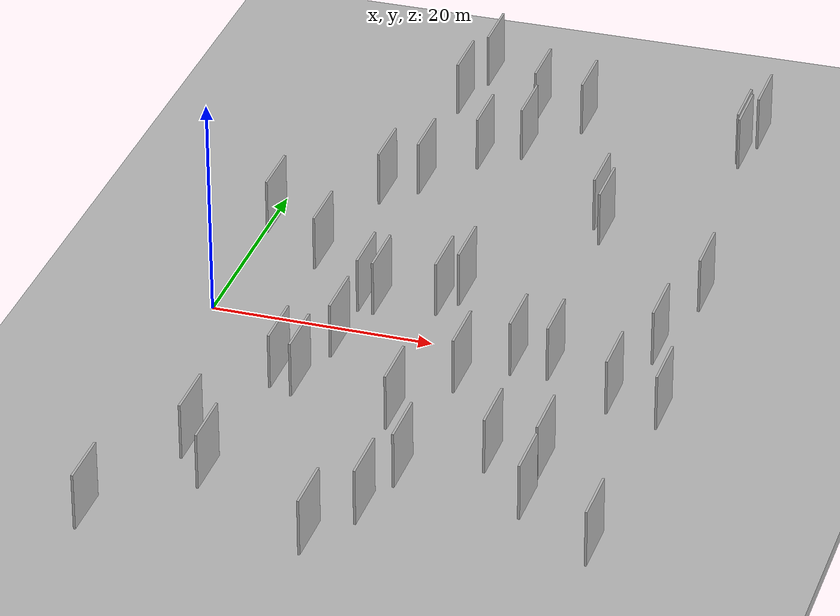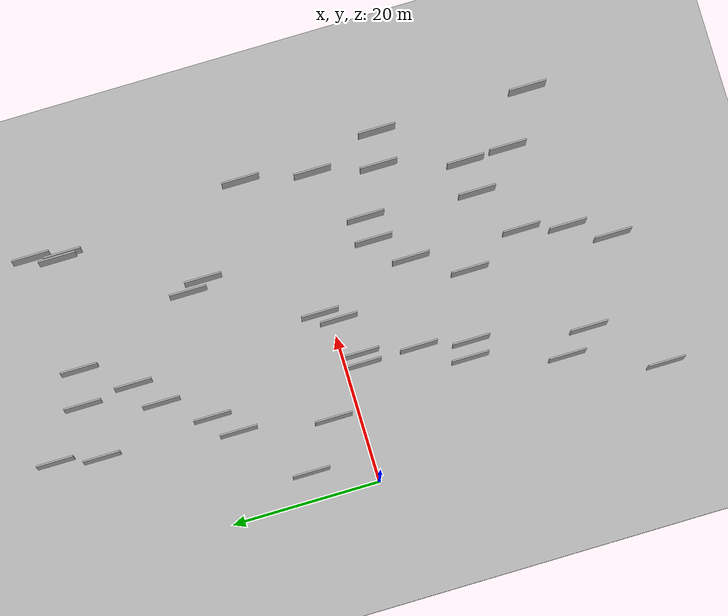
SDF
<?xml version="1.0" encoding="utf-8"?>

<sdf version="1.6">

   <world name="default">

      <gui fullscreen="0">

         <camera name="user_camera">

            <pose>-15 0 4.57585 0 0 0</pose>

            <view_controller>orbit</view_controller>

         </camera>

      </gui>

      <scene>

         <sky>

           <clouds>

             <speed>12</speed>

           </clouds>

         </sky>

         <ambient>0.4 0.4 0.4 1</ambient>

         <background>0.7 0.7 0.7 1</background>

         <shadows>1</shadows>

      </scene>

      <gravity>0 0 -9.8066</gravity>

      <magnetic_field>6e-06 2.3e-05 -4.2e-05</magnetic_field>

      <physics default="0" name="default_physics" type="ode">

         <ode>

            <solver>

               <type>quick</type>

               <iters>10</iters>

               <sor>1.0</sor>

               <use_dynamic_moi_rescaling>0</use_dynamic_moi_rescaling>

            </solver>

            <constraints>

               <cfm>0</cfm>

               <erp>0.2</erp>

               <contact_max_correcting_vel>100</contact_max_correcting_vel>

               <contact_surface_layer>0.001</contact_surface_layer>

            </constraints>

         </ode>

         <max_step_size>0.004</max_step_size>

         <real_time_factor>1</real_time_factor>

         <real_time_update_rate>250</real_time_update_rate>

      </physics>

      <light name="sun" type="directional">

         <cast_shadows>1</cast_shadows>

         <pose>0 0 10 0 0 0</pose>

         <diffuse>0.8 0.8 0.8 1</diffuse>

         <specular>0.2 0.2 0.2 1</specular>

         <attenuation>

            <range>1000</range>

            <constant>0.9</constant>

            <linear>0.01</linear>

            <quadratic>0.001</quadratic>

         </attenuation>

         <direction>-0.5 0.1 -0.9</direction>

      </light>

      <include>

         <name>ground_plane_1</name>

         <uri>model://HANNAS_ground_plane</uri>

         <pose>0 0 0  0 0 0</pose>

      </include>

      <include>

         <name>ground_plane_2</name>

         <uri>model://HANNAS_ground_plane</uri>

         <pose>100 0 0  0 0 0</pose>

      </include>

      <model name="HANNAS_wall_1">

         <static>1</static>

         <pose frame="">39.2944 32.1262 5.0 0.000000 0.000000 1.570796</pose>

         <link name="link">

            <pose frame="">0 0 2.50 0 0 0</pose>

            <collision name="collision">

               <geometry>

                  <box>

                     <size>5.00 0.2 5.00</size>

                  </box>

               </geometry>

               <max_contacts>10</max_contacts>

               <surface>

                  <contact>

                     <ode/>

                  </contact>

                  <bounce/>

                  <friction>

                     <torsional>

                        <ode/>

                     </torsional>

                     <ode/>

                  </friction>

               </surface>

            </collision>

            <visual name="visual">

               <cast_shadows>0</cast_shadows>

               <geometry>

                  <box>

                     <size>5.00 0.2 5.00</size>

                  </box>

               </geometry>

               <material>

                  <script>

                     <uri>model://HANNAS_wall/materials/scripts</uri>

                     <uri>model://HANNAS_wall/materials/textures</uri>

                     <name>vrc/HANNAS_wall</name>

                  </script>

               </material>

            </visual>

            <self_collide>0</self_collide>

            <enable_wind>0</enable_wind>

            <kinematic>0</kinematic>

         </link>

      </model>

      <model name="HANNAS_wall_2">

         <static>1</static>

         <pose frame="">36.5267 -22.5072 5.0 0.000000 0.000000 1.570796</pose>

         <link name="link">

            <pose frame="">0 0 2.50 0 0 0</pose>

            <collision name="collision">

               <geometry>

                  <box>

                     <size>5.00 0.2 5.00</size>

                  </box>

               </geometry>

               <max_contacts>10</max_contacts>

               <surface>

                  <contact>

                     <ode/>

                  </contact>

                  <bounce/>

                  <friction>

                     <torsional>

                        <ode/>

                     </torsional>

                     <ode/>

                  </friction>

               </surface>

            </collision>

            <visual name="visual">

               <cast_shadows>0</cast_shadows>

               <geometry>

                  <box>

                     <size>5.00 0.2 5.00</size>

                  </box>

               </geometry>

               <material>

                  <script>

                     <uri>model://HANNAS_wall/materials/scripts</uri>

                     <uri>model://HANNAS_wall/materials/textures</uri>

                     <name>vrc/HANNAS_wall</name>

                  </script>

               </material>

            </visual>

            <self_collide>0</self_collide>

            <enable_wind>0</enable_wind>

            <kinematic>0</kinematic>

         </link>

      </model>

      <model name="HANNAS_wall_3">

         <static>1</static>

         <pose frame="">30.2376 17.0134 5.0 0.000000 0.000000 1.570796</pose>

         <link name="link">

            <pose frame="">0 0 2.50 0 0 0</pose>

            <collision name="collision">

               <geometry>

                  <box>

                     <size>5.00 0.2 5.00</size>

                  </box>

               </geometry>

               <max_contacts>10</max_contacts>

               <surface>

                  <contact>

                     <ode/>

                  </contact>

                  <bounce/>

                  <friction>

                     <torsional>

                        <ode/>

                     </torsional>

                     <ode/>

                  </friction>

               </surface>

            </collision>

            <visual name="visual">

               <cast_shadows>0</cast_shadows>

               <geometry>

                  <box>

                     <size>5.00 0.2 5.00</size>

                  </box>

               </geometry>

               <material>

                  <script>

                     <uri>model://HANNAS_wall/materials/scripts</uri>

                     <uri>model://HANNAS_wall/materials/textures</uri>

                     <name>vrc/HANNAS_wall</name>

                  </script>

               </material>

            </visual>

            <self_collide>0</self_collide>

            <enable_wind>0</enable_wind>

            <kinematic>0</kinematic>

         </link>

      </model>

      <model name="HANNAS_wall_4">

         <static>1</static>

         <pose frame="">3.1405 8.2862 5.0 0.000000 0.000000 1.570796</pose>

         <link name="link">

            <pose frame="">0 0 2.50 0 0 0</pose>

            <collision name="collision">

               <geometry>

                  <box>

                     <size>5.00 0.2 5.00</size>

                  </box>

               </geometry>

               <max_contacts>10</max_contacts>

               <surface>

                  <contact>

                     <ode/>

                  </contact>

                  <bounce/>

                  <friction>

                     <torsional>

                        <ode/>

                     </torsional>

                     <ode/>

                  </friction>

               </surface>

            </collision>

            <visual name="visual">

               <cast_shadows>0</cast_shadows>

               <geometry>

                  <box>

                     <size>5.00 0.2 5.00</size>

                  </box>

               </geometry>

               <material>

                  <script>

                     <uri>model://HANNAS_wall/materials/scripts</uri>

                     <uri>model://HANNAS_wall/materials/textures</uri>

                     <name>vrc/HANNAS_wall</name>

                  </script>

               </material>

            </visual>

            <self_collide>0</self_collide>

            <enable_wind>0</enable_wind>

            <kinematic>0</kinematic>

         </link>

      </model>

      <model name="HANNAS_wall_5">

         <static>1</static>

         <pose frame="">43.5131 -33.0318 5.0 0.000000 0.000000 1.570796</pose>

         <link name="link">

            <pose frame="">0 0 2.50 0 0 0</pose>

            <collision name="collision">

               <geometry>

                  <box>

                     <size>5.00 0.2 5.00</size>

                  </box>

               </geometry>

               <max_contacts>10</max_contacts>

               <surface>

                  <contact>

                     <ode/>

                  </contact>

                  <bounce/>

                  <friction>

                     <torsional>

                        <ode/>

                     </torsional>

                     <ode/>

                  </friction>

               </surface>

            </collision>

            <visual name="visual">

               <cast_shadows>0</cast_shadows>

               <geometry>

                  <box>

                     <size>5.00 0.2 5.00</size>

                  </box>

               </geometry>

               <material>

                  <script>

                     <uri>model://HANNAS_wall/materials/scripts</uri>

                     <uri>model://HANNAS_wall/materials/textures</uri>

                     <name>vrc/HANNAS_wall</name>

                  </script>

               </material>

            </visual>

            <self_collide>0</self_collide>

            <enable_wind>0</enable_wind>

            <kinematic>0</kinematic>

         </link>

      </model>

      <model name="HANNAS_wall_6">

         <static>1</static>

         <pose frame="">12.6990 33.7295 5.0 0.000000 0.000000 1.570796</pose>

         <link name="link">

            <pose frame="">0 0 2.50 0 0 0</pose>

            <collision name="collision">

               <geometry>

                  <box>

                     <size>5.00 0.2 5.00</size>

                  </box>

               </geometry>

               <max_contacts>10</max_contacts>

               <surface>

                  <contact>

                     <ode/>

                  </contact>

                  <bounce/>

                  <friction>

                     <torsional>

                        <ode/>

                     </torsional>

                     <ode/>

                  </friction>

               </surface>

            </collision>

            <visual name="visual">

               <cast_shadows>0</cast_shadows>

               <geometry>

                  <box>

                     <size>5.00 0.2 5.00</size>

                  </box>

               </geometry>

               <material>

                  <script>

                     <uri>model://HANNAS_wall/materials/scripts</uri>

                     <uri>model://HANNAS_wall/materials/textures</uri>

                     <name>vrc/HANNAS_wall</name>

                  </script>

               </material>

            </visual>

            <self_collide>0</self_collide>

            <enable_wind>0</enable_wind>

            <kinematic>0</kinematic>

         </link>

      </model>

      <model name="HANNAS_wall_7">

         <static>1</static>

         <pose frame="">11.6338 -15.7226 5.0 0.000000 0.000000 1.570796</pose>

         <link name="link">

            <pose frame="">0 0 2.50 0 0 0</pose>

            <collision name="collision">

               <geometry>

                  <box>

                     <size>5.00 0.2 5.00</size>

                  </box>

               </geometry>

               <max_contacts>10</max_contacts>

               <surface>

                  <contact>

                     <ode/>

                  </contact>

                  <bounce/>

                  <friction>

                     <torsional>

                        <ode/>

                     </torsional>

                     <ode/>

                  </friction>

               </surface>

            </collision>

            <visual name="visual">

               <cast_shadows>0</cast_shadows>

               <geometry>

                  <box>

                     <size>5.00 0.2 5.00</size>

                  </box>

               </geometry>

               <material>

                  <script>

                     <uri>model://HANNAS_wall/materials/scripts</uri>

                     <uri>model://HANNAS_wall/materials/textures</uri>

                     <name>vrc/HANNAS_wall</name>

                  </script>

               </material>

            </visual>

            <self_collide>0</self_collide>

            <enable_wind>0</enable_wind>

            <kinematic>0</kinematic>

         </link>

      </model>

      <model name="HANNAS_wall_8">

         <static>1</static>

         <pose frame="">32.2095 -22.7883 5.0 0.000000 0.000000 1.570796</pose>

         <link name="link">

            <pose frame="">0 0 2.50 0 0 0</pose>

            <collision name="collision">

               <geometry>

                  <box>

                     <size>5.00 0.2 5.00</size>

                  </box>

               </geometry>

               <max_contacts>10</max_contacts>

               <surface>

                  <contact>

                     <ode/>

                  </contact>

                  <bounce/>

                  <friction>

                     <torsional>

                        <ode/>

                     </torsional>

                     <ode/>

                  </friction>

               </surface>

            </collision>

            <visual name="visual">

               <cast_shadows>0</cast_shadows>

               <geometry>

                  <box>

                     <size>5.00 0.2 5.00</size>

                  </box>

               </geometry>

               <material>

                  <script>

                     <uri>model://HANNAS_wall/materials/scripts</uri>

                     <uri>model://HANNAS_wall/materials/textures</uri>

                     <name>vrc/HANNAS_wall</name>

                  </script>

               </material>

            </visual>

            <self_collide>0</self_collide>

            <enable_wind>0</enable_wind>

            <kinematic>0</kinematic>

         </link>

      </model>

      <model name="HANNAS_wall_9">

         <static>1</static>

         <pose frame="">22.6856 1.3617 5.0 0.000000 0.000000 1.570796</pose>

         <link name="link">

            <pose frame="">0 0 2.50 0 0 0</pose>

            <collision name="collision">

               <geometry>

                  <box>

                     <size>5.00 0.2 5.00</size>

                  </box>

               </geometry>

               <max_contacts>10</max_contacts>

               <surface>

                  <contact>

                     <ode/>

                  </contact>

                  <bounce/>

                  <friction>

                     <torsional>

                        <ode/>

                     </torsional>

                     <ode/>

                  </friction>

               </surface>

            </collision>

            <visual name="visual">

               <cast_shadows>0</cast_shadows>

               <geometry>

                  <box>

                     <size>5.00 0.2 5.00</size>

                  </box>

               </geometry>

               <material>

                  <script>

                     <uri>model://HANNAS_wall/materials/scripts</uri>

                     <uri>model://HANNAS_wall/materials/textures</uri>

                     <name>vrc/HANNAS_wall</name>

                  </script>

               </material>

            </visual>

            <self_collide>0</self_collide>

            <enable_wind>0</enable_wind>

            <kinematic>0</kinematic>

         </link>

      </model>

      <model name="HANNAS_wall_10">

         <static>1</static>

         <pose frame="">21.3297 -0.7574 5.0 0.000000 0.000000 1.570796</pose>

         <link name="link">

            <pose frame="">0 0 2.50 0 0 0</pose>

            <collision name="collision">

               <geometry>

                  <box>

                     <size>5.00 0.2 5.00</size>

                  </box>

               </geometry>

               <max_contacts>10</max_contacts>

               <surface>

                  <contact>

                     <ode/>

                  </contact>

                  <bounce/>

                  <friction>

                     <torsional>

                        <ode/>

                     </torsional>

                     <ode/>

                  </friction>

               </surface>

            </collision>

            <visual name="visual">

               <cast_shadows>0</cast_shadows>

               <geometry>

                  <box>

                     <size>5.00 0.2 5.00</size>

                  </box>

               </geometry>

               <material>

                  <script>

                     <uri>model://HANNAS_wall/materials/scripts</uri>

                     <uri>model://HANNAS_wall/materials/textures</uri>

                     <name>vrc/HANNAS_wall</name>

                  </script>

               </material>

            </visual>

            <self_collide>0</self_collide>

            <enable_wind>0</enable_wind>

            <kinematic>0</kinematic>

         </link>

      </model>

      <model name="HANNAS_wall_11">

         <static>1</static>

         <pose frame="">11.0647 -31.6143 5.0 0.000000 0.000000 1.570796</pose>

         <link name="link">

            <pose frame="">0 0 2.50 0 0 0</pose>

            <collision name="collision">

               <geometry>

                  <box>

                     <size>5.00 0.2 5.00</size>

                  </box>

               </geometry>

               <max_contacts>10</max_contacts>

               <surface>

                  <contact>

                     <ode/>

                  </contact>

                  <bounce/>

                  <friction>

                     <torsional>

                        <ode/>

                     </torsional>

                     <ode/>

                  </friction>

               </surface>

            </collision>

            <visual name="visual">

               <cast_shadows>0</cast_shadows>

               <geometry>

                  <box>

                     <size>5.00 0.2 5.00</size>

                  </box>

               </geometry>

               <material>

                  <script>

                     <uri>model://HANNAS_wall/materials/scripts</uri>

                     <uri>model://HANNAS_wall/materials/textures</uri>

                     <name>vrc/HANNAS_wall</name>

                  </script>

               </material>

            </visual>

            <self_collide>0</self_collide>

            <enable_wind>0</enable_wind>

            <kinematic>0</kinematic>

         </link>

      </model>

      <model name="HANNAS_wall_12">

         <static>1</static>

         <pose frame="">17.3772 24.3900 5.0 0.000000 0.000000 1.570796</pose>

         <link name="link">

            <pose frame="">0 0 2.50 0 0 0</pose>

            <collision name="collision">

               <geometry>

                  <box>

                     <size>5.00 0.2 5.00</size>

                  </box>

               </geometry>

               <max_contacts>10</max_contacts>

               <surface>

                  <contact>

                     <ode/>

                  </contact>

                  <bounce/>

                  <friction>

                     <torsional>

                        <ode/>

                     </torsional>

                     <ode/>

                  </friction>

               </surface>

            </collision>

            <visual name="visual">

               <cast_shadows>0</cast_shadows>

               <geometry>

                  <box>

                     <size>5.00 0.2 5.00</size>

                  </box>

               </geometry>

               <material>

                  <script>

                     <uri>model://HANNAS_wall/materials/scripts</uri>

                     <uri>model://HANNAS_wall/materials/textures</uri>

                     <name>vrc/HANNAS_wall</name>

                  </script>

               </material>

            </visual>

            <self_collide>0</self_collide>

            <enable_wind>0</enable_wind>

            <kinematic>0</kinematic>

         </link>

      </model>

      <model name="HANNAS_wall_13">

         <static>1</static>

         <pose frame="">9.0673 3.5388 5.0 0.000000 0.000000 1.570796</pose>

         <link name="link">

            <pose frame="">0 0 2.50 0 0 0</pose>

            <collision name="collision">

               <geometry>

                  <box>

                     <size>5.00 0.2 5.00</size>

                  </box>

               </geometry>

               <max_contacts>10</max_contacts>

               <surface>

                  <contact>

                     <ode/>

                  </contact>

                  <bounce/>

                  <friction>

                     <torsional>

                        <ode/>

                     </torsional>

                     <ode/>

                  </friction>

               </surface>

            </collision>

            <visual name="visual">

               <cast_shadows>0</cast_shadows>

               <geometry>

                  <box>

                     <size>5.00 0.2 5.00</size>

                  </box>

               </geometry>

               <material>

                  <script>

                     <uri>model://HANNAS_wall/materials/scripts</uri>

                     <uri>model://HANNAS_wall/materials/textures</uri>

                     <name>vrc/HANNAS_wall</name>

                  </script>

               </material>

            </visual>

            <self_collide>0</self_collide>

            <enable_wind>0</enable_wind>

            <kinematic>0</kinematic>

         </link>

      </model>

      <model name="HANNAS_wall_14">

         <static>1</static>

         <pose frame="">40.3697 35.3827 5.0 0.000000 0.000000 1.570796</pose>

         <link name="link">

            <pose frame="">0 0 2.50 0 0 0</pose>

            <collision name="collision">

               <geometry>

                  <box>

                     <size>5.00 0.2 5.00</size>

                  </box>

               </geometry>

               <max_contacts>10</max_contacts>

               <surface>

                  <contact>

                     <ode/>

                  </contact>

                  <bounce/>

                  <friction>

                     <torsional>

                        <ode/>

                     </torsional>

                     <ode/>

                  </friction>

               </surface>

            </collision>

            <visual name="visual">

               <cast_shadows>0</cast_shadows>

               <geometry>

                  <box>

                     <size>5.00 0.2 5.00</size>

                  </box>

               </geometry>

               <material>

                  <script>

                     <uri>model://HANNAS_wall/materials/scripts</uri>

                     <uri>model://HANNAS_wall/materials/textures</uri>

                     <name>vrc/HANNAS_wall</name>

                  </script>

               </material>

            </visual>

            <self_collide>0</self_collide>

            <enable_wind>0</enable_wind>

            <kinematic>0</kinematic>

         </link>

      </model>

      <model name="HANNAS_wall_15">

         <static>1</static>

         <pose frame="">22.7039 -18.9560 5.0 0.000000 0.000000 1.570796</pose>

         <link name="link">

            <pose frame="">0 0 2.50 0 0 0</pose>

            <collision name="collision">

               <geometry>

                  <box>

                     <size>5.00 0.2 5.00</size>

                  </box>

               </geometry>

               <max_contacts>10</max_contacts>

               <surface>

                  <contact>

                     <ode/>

                  </contact>

                  <bounce/>

                  <friction>

                     <torsional>

                        <ode/>

                     </torsional>

                     <ode/>

                  </friction>

               </surface>

            </collision>

            <visual name="visual">

               <cast_shadows>0</cast_shadows>

               <geometry>

                  <box>

                     <size>5.00 0.2 5.00</size>

                  </box>

               </geometry>

               <material>

                  <script>

                     <uri>model://HANNAS_wall/materials/scripts</uri>

                     <uri>model://HANNAS_wall/materials/textures</uri>

                     <name>vrc/HANNAS_wall</name>

                  </script>

               </material>

            </visual>

            <self_collide>0</self_collide>

            <enable_wind>0</enable_wind>

            <kinematic>0</kinematic>

         </link>

      </model>

      <model name="HANNAS_wall_16">

         <static>1</static>

         <pose frame="">10.9204 15.8211 5.0 0.000000 0.000000 1.570796</pose>

         <link name="link">

            <pose frame="">0 0 2.50 0 0 0</pose>

            <collision name="collision">

               <geometry>

                  <box>

                     <size>5.00 0.2 5.00</size>

                  </box>

               </geometry>

               <max_contacts>10</max_contacts>

               <surface>

                  <contact>

                     <ode/>

                  </contact>

                  <bounce/>

                  <friction>

                     <torsional>

                        <ode/>

                     </torsional>

                     <ode/>

                  </friction>

               </surface>

            </collision>

            <visual name="visual">

               <cast_shadows>0</cast_shadows>

               <geometry>

                  <box>

                     <size>5.00 0.2 5.00</size>

                  </box>

               </geometry>

               <material>

                  <script>

                     <uri>model://HANNAS_wall/materials/scripts</uri>

                     <uri>model://HANNAS_wall/materials/textures</uri>

                     <name>vrc/HANNAS_wall</name>

                  </script>

               </material>

            </visual>

            <self_collide>0</self_collide>

            <enable_wind>0</enable_wind>

            <kinematic>0</kinematic>

         </link>

      </model>

      <model name="HANNAS_wall_17">

         <static>1</static>

         <pose frame="">8.3291 -27.8924 5.0 0.000000 0.000000 1.570796</pose>

         <link name="link">

            <pose frame="">0 0 2.50 0 0 0</pose>

            <collision name="collision">

               <geometry>

                  <box>

                     <size>5.00 0.2 5.00</size>

                  </box>

               </geometry>

               <max_contacts>10</max_contacts>

               <surface>

                  <contact>

                     <ode/>

                  </contact>

                  <bounce/>

                  <friction>

                     <torsional>

                        <ode/>

                     </torsional>

                     <ode/>

                  </friction>

               </surface>

            </collision>

            <visual name="visual">

               <cast_shadows>0</cast_shadows>

               <geometry>

                  <box>

                     <size>5.00 0.2 5.00</size>

                  </box>

               </geometry>

               <material>

                  <script>

                     <uri>model://HANNAS_wall/materials/scripts</uri>

                     <uri>model://HANNAS_wall/materials/textures</uri>

                     <name>vrc/HANNAS_wall</name>

                  </script>

               </material>

            </visual>

            <self_collide>0</self_collide>

            <enable_wind>0</enable_wind>

            <kinematic>0</kinematic>

         </link>

      </model>

      <model name="HANNAS_wall_18">

         <static>1</static>

         <pose frame="">33.1860 -7.9120 5.0 0.000000 0.000000 1.570796</pose>

         <link name="link">

            <pose frame="">0 0 2.50 0 0 0</pose>

            <collision name="collision">

               <geometry>

                  <box>

                     <size>5.00 0.2 5.00</size>

                  </box>

               </geometry>

               <max_contacts>10</max_contacts>

               <surface>

                  <contact>

                     <ode/>

                  </contact>

                  <bounce/>

                  <friction>

                     <torsional>

                        <ode/>

                     </torsional>

                     <ode/>

                  </friction>

               </surface>

            </collision>

            <visual name="visual">

               <cast_shadows>0</cast_shadows>

               <geometry>

                  <box>

                     <size>5.00 0.2 5.00</size>

                  </box>

               </geometry>

               <material>

                  <script>

                     <uri>model://HANNAS_wall/materials/scripts</uri>

                     <uri>model://HANNAS_wall/materials/textures</uri>

                     <name>vrc/HANNAS_wall</name>

                  </script>

               </material>

            </visual>

            <self_collide>0</self_collide>

            <enable_wind>0</enable_wind>

            <kinematic>0</kinematic>

         </link>

      </model>

      <model name="HANNAS_wall_19">

         <static>1</static>

         <pose frame="">13.7160 -16.4532 5.0 0.000000 0.000000 1.570796</pose>

         <link name="link">

            <pose frame="">0 0 2.50 0 0 0</pose>

            <collision name="collision">

               <geometry>

                  <box>

                     <size>5.00 0.2 5.00</size>

                  </box>

               </geometry>

               <max_contacts>10</max_contacts>

               <surface>

                  <contact>

                     <ode/>

                  </contact>

                  <bounce/>

                  <friction>

                     <torsional>

                        <ode/>

                     </torsional>

                     <ode/>

                  </friction>

               </surface>

            </collision>

            <visual name="visual">

               <cast_shadows>0</cast_shadows>

               <geometry>

                  <box>

                     <size>5.00 0.2 5.00</size>

                  </box>

               </geometry>

               <material>

                  <script>

                     <uri>model://HANNAS_wall/materials/scripts</uri>

                     <uri>model://HANNAS_wall/materials/textures</uri>

                     <name>vrc/HANNAS_wall</name>

                  </script>

               </material>

            </visual>

            <self_collide>0</self_collide>

            <enable_wind>0</enable_wind>

            <kinematic>0</kinematic>

         </link>

      </model>

      <model name="HANNAS_wall_20">

         <static>1</static>

         <pose frame="">25.9150 -26.9164 5.0 0.000000 0.000000 1.570796</pose>

         <link name="link">

            <pose frame="">0 0 2.50 0 0 0</pose>

            <collision name="collision">

               <geometry>

                  <box>

                     <size>5.00 0.2 5.00</size>

                  </box>

               </geometry>

               <max_contacts>10</max_contacts>

               <surface>

                  <contact>

                     <ode/>

                  </contact>

                  <bounce/>

                  <friction>

                     <torsional>

                        <ode/>

                     </torsional>

                     <ode/>

                  </friction>

               </surface>

            </collision>

            <visual name="visual">

               <cast_shadows>0</cast_shadows>

               <geometry>

                  <box>

                     <size>5.00 0.2 5.00</size>

                  </box>

               </geometry>

               <material>

                  <script>

                     <uri>model://HANNAS_wall/materials/scripts</uri>

                     <uri>model://HANNAS_wall/materials/textures</uri>

                     <name>vrc/HANNAS_wall</name>

                  </script>

               </material>

            </visual>

            <self_collide>0</self_collide>

            <enable_wind>0</enable_wind>

            <kinematic>0</kinematic>

         </link>

      </model>

      <model name="HANNAS_wall_21">

         <static>1</static>

         <pose frame="">3.8240 -39.8998 5.0 0.000000 0.000000 1.570796</pose>

         <link name="link">

            <pose frame="">0 0 2.50 0 0 0</pose>

            <collision name="collision">

               <geometry>

                  <box>

                     <size>5.00 0.2 5.00</size>

                  </box>

               </geometry>

               <max_contacts>10</max_contacts>

               <surface>

                  <contact>

                     <ode/>

                  </contact>

                  <bounce/>

                  <friction>

                     <torsional>

                        <ode/>

                     </torsional>

                     <ode/>

                  </friction>

               </surface>

            </collision>

            <visual name="visual">

               <cast_shadows>0</cast_shadows>

               <geometry>

                  <box>

                     <size>5.00 0.2 5.00</size>

                  </box>

               </geometry>

               <material>

                  <script>

                     <uri>model://HANNAS_wall/materials/scripts</uri>

                     <uri>model://HANNAS_wall/materials/textures</uri>

                     <name>vrc/HANNAS_wall</name>

                  </script>

               </material>

            </visual>

            <self_collide>0</self_collide>

            <enable_wind>0</enable_wind>

            <kinematic>0</kinematic>

         </link>

      </model>

      <model name="HANNAS_wall_22">

         <static>1</static>

         <pose frame="">24.5226 33.4015 5.0 0.000000 0.000000 1.570796</pose>

         <link name="link">

            <pose frame="">0 0 2.50 0 0 0</pose>

            <collision name="collision">

               <geometry>

                  <box>

                     <size>5.00 0.2 5.00</size>

                  </box>

               </geometry>

               <max_contacts>10</max_contacts>

               <surface>

                  <contact>

                     <ode/>

                  </contact>

                  <bounce/>

                  <friction>

                     <torsional>

                        <ode/>

                     </torsional>

                     <ode/>

                  </friction>

               </surface>

            </collision>

            <visual name="visual">

               <cast_shadows>0</cast_shadows>

               <geometry>

                  <box>

                     <size>5.00 0.2 5.00</size>

                  </box>

               </geometry>

               <material>

                  <script>

                     <uri>model://HANNAS_wall/materials/scripts</uri>

                     <uri>model://HANNAS_wall/materials/textures</uri>

                     <name>vrc/HANNAS_wall</name>

                  </script>

               </material>

            </visual>

            <self_collide>0</self_collide>

            <enable_wind>0</enable_wind>

            <kinematic>0</kinematic>

         </link>

      </model>

      <model name="HANNAS_wall_23">

         <static>1</static>

         <pose frame="">43.6725 -12.5322 5.0 0.000000 0.000000 1.570796</pose>

         <link name="link">

            <pose frame="">0 0 2.50 0 0 0</pose>

            <collision name="collision">

               <geometry>

                  <box>

                     <size>5.00 0.2 5.00</size>

                  </box>

               </geometry>

               <max_contacts>10</max_contacts>

               <surface>

                  <contact>

                     <ode/>

                  </contact>

                  <bounce/>

                  <friction>

                     <torsional>

                        <ode/>

                     </torsional>

                     <ode/>

                  </friction>

               </surface>

            </collision>

            <visual name="visual">

               <cast_shadows>0</cast_shadows>

               <geometry>

                  <box>

                     <size>5.00 0.2 5.00</size>

                  </box>

               </geometry>

               <material>

                  <script>

                     <uri>model://HANNAS_wall/materials/scripts</uri>

                     <uri>model://HANNAS_wall/materials/textures</uri>

                     <name>vrc/HANNAS_wall</name>

                  </script>

               </material>

            </visual>

            <self_collide>0</self_collide>

            <enable_wind>0</enable_wind>

            <kinematic>0</kinematic>

         </link>

      </model>

      <model name="HANNAS_wall_24">

         <static>1</static>

         <pose frame="">26.3204 -12.0358 5.0 0.000000 0.000000 1.570796</pose>

         <link name="link">

            <pose frame="">0 0 2.50 0 0 0</pose>

            <collision name="collision">

               <geometry>

                  <box>

                     <size>5.00 0.2 5.00</size>

                  </box>

               </geometry>

               <max_contacts>10</max_contacts>

               <surface>

                  <contact>

                     <ode/>

                  </contact>

                  <bounce/>

                  <friction>

                     <torsional>

                        <ode/>

                     </torsional>

                     <ode/>

                  </friction>

               </surface>

            </collision>

            <visual name="visual">

               <cast_shadows>0</cast_shadows>

               <geometry>

                  <box>

                     <size>5.00 0.2 5.00</size>

                  </box>

               </geometry>

               <material>

                  <script>

                     <uri>model://HANNAS_wall/materials/scripts</uri>

                     <uri>model://HANNAS_wall/materials/textures</uri>

                     <name>vrc/HANNAS_wall</name>

                  </script>

               </material>

            </visual>

            <self_collide>0</self_collide>

            <enable_wind>0</enable_wind>

            <kinematic>0</kinematic>

         </link>

      </model>

      <model name="HANNAS_wall_25">

         <static>1</static>

         <pose frame="">24.6346 -32.8327 5.0 0.000000 0.000000 1.570796</pose>

         <link name="link">

            <pose frame="">0 0 2.50 0 0 0</pose>

            <collision name="collision">

               <geometry>

                  <box>

                     <size>5.00 0.2 5.00</size>

                  </box>

               </geometry>

               <max_contacts>10</max_contacts>

               <surface>

                  <contact>

                     <ode/>

                  </contact>

                  <bounce/>

                  <friction>

                     <torsional>

                        <ode/>

                     </torsional>

                     <ode/>

                  </friction>

               </surface>

            </collision>

            <visual name="visual">

               <cast_shadows>0</cast_shadows>

               <geometry>

                  <box>

                     <size>5.00 0.2 5.00</size>

                  </box>

               </geometry>

               <material>

                  <script>

                     <uri>model://HANNAS_wall/materials/scripts</uri>

                     <uri>model://HANNAS_wall/materials/textures</uri>

                     <name>vrc/HANNAS_wall</name>

                  </script>

               </material>

            </visual>

            <self_collide>0</self_collide>

            <enable_wind>0</enable_wind>

            <kinematic>0</kinematic>

         </link>

      </model>

      <model name="HANNAS_wall_26">

         <static>1</static>

         <pose frame="">14.9176 -9.7219 5.0 0.000000 0.000000 1.570796</pose>

         <link name="link">

            <pose frame="">0 0 2.50 0 0 0</pose>

            <collision name="collision">

               <geometry>

                  <box>

                     <size>5.00 0.2 5.00</size>

                  </box>

               </geometry>

               <max_contacts>10</max_contacts>

               <surface>

                  <contact>

                     <ode/>

                  </contact>

                  <bounce/>

                  <friction>

                     <torsional>

                        <ode/>

                     </torsional>

                     <ode/>

                  </friction>

               </surface>

            </collision>

            <visual name="visual">

               <cast_shadows>0</cast_shadows>

               <geometry>

                  <box>

                     <size>5.00 0.2 5.00</size>

                  </box>

               </geometry>

               <material>

                  <script>

                     <uri>model://HANNAS_wall/materials/scripts</uri>

                     <uri>model://HANNAS_wall/materials/textures</uri>

                     <name>vrc/HANNAS_wall</name>

                  </script>

               </material>

            </visual>

            <self_collide>0</self_collide>

            <enable_wind>0</enable_wind>

            <kinematic>0</kinematic>

         </link>

      </model>

      <model name="HANNAS_wall_27">

         <static>1</static>

         <pose frame="">36.7372 -28.3265 5.0 0.000000 0.000000 1.570796</pose>

         <link name="link">

            <pose frame="">0 0 2.50 0 0 0</pose>

            <collision name="collision">

               <geometry>

                  <box>

                     <size>5.00 0.2 5.00</size>

                  </box>

               </geometry>

               <max_contacts>10</max_contacts>

               <surface>

                  <contact>

                     <ode/>

                  </contact>

                  <bounce/>

                  <friction>

                     <torsional>

                        <ode/>

                     </torsional>

                     <ode/>

                  </friction>

               </surface>

            </collision>

            <visual name="visual">

               <cast_shadows>0</cast_shadows>

               <geometry>

                  <box>

                     <size>5.00 0.2 5.00</size>

                  </box>

               </geometry>

               <material>

                  <script>

                     <uri>model://HANNAS_wall/materials/scripts</uri>

                     <uri>model://HANNAS_wall/materials/textures</uri>

                     <name>vrc/HANNAS_wall</name>

                  </script>

               </material>

            </visual>

            <self_collide>0</self_collide>

            <enable_wind>0</enable_wind>

            <kinematic>0</kinematic>

         </link>

      </model>

      <model name="HANNAS_wall_28">

         <static>1</static>

         <pose frame="">19.8889 34.2585 5.0 0.000000 0.000000 1.570796</pose>

         <link name="link">

            <pose frame="">0 0 2.50 0 0 0</pose>

            <collision name="collision">

               <geometry>

                  <box>

                     <size>5.00 0.2 5.00</size>

                  </box>

               </geometry>

               <max_contacts>10</max_contacts>

               <surface>

                  <contact>

                     <ode/>

                  </contact>

                  <bounce/>

                  <friction>

                     <torsional>

                        <ode/>

                     </torsional>

                     <ode/>

                  </friction>

               </surface>

            </collision>

            <visual name="visual">

               <cast_shadows>0</cast_shadows>

               <geometry>

                  <box>

                     <size>5.00 0.2 5.00</size>

                  </box>

               </geometry>

               <material>

                  <script>

                     <uri>model://HANNAS_wall/materials/scripts</uri>

                     <uri>model://HANNAS_wall/materials/textures</uri>

                     <name>vrc/HANNAS_wall</name>

                  </script>

               </material>

            </visual>

            <self_collide>0</self_collide>

            <enable_wind>0</enable_wind>

            <kinematic>0</kinematic>

         </link>

      </model>

      <model name="HANNAS_wall_29">

         <static>1</static>

         <pose frame="">13.7028 18.5525 5.0 0.000000 0.000000 1.570796</pose>

         <link name="link">

            <pose frame="">0 0 2.50 0 0 0</pose>

            <collision name="collision">

               <geometry>

                  <box>

                     <size>5.00 0.2 5.00</size>

                  </box>

               </geometry>

               <max_contacts>10</max_contacts>

               <surface>

                  <contact>

                     <ode/>

                  </contact>

                  <bounce/>

                  <friction>

                     <torsional>

                        <ode/>

                     </torsional>

                     <ode/>

                  </friction>

               </surface>

            </collision>

            <visual name="visual">

               <cast_shadows>0</cast_shadows>

               <geometry>

                  <box>

                     <size>5.00 0.2 5.00</size>

                  </box>

               </geometry>

               <material>

                  <script>

                     <uri>model://HANNAS_wall/materials/scripts</uri>

                     <uri>model://HANNAS_wall/materials/textures</uri>

                     <name>vrc/HANNAS_wall</name>

                  </script>

               </material>

            </visual>

            <self_collide>0</self_collide>

            <enable_wind>0</enable_wind>

            <kinematic>0</kinematic>

         </link>

      </model>

      <model name="HANNAS_wall_30">

         <static>1</static>

         <pose frame="">16.1888 -2.1707 5.0 0.000000 0.000000 1.570796</pose>

         <link name="link">

            <pose frame="">0 0 2.50 0 0 0</pose>

            <collision name="collision">

               <geometry>

                  <box>

                     <size>5.00 0.2 5.00</size>

                  </box>

               </geometry>

               <max_contacts>10</max_contacts>

               <surface>

                  <contact>

                     <ode/>

                  </contact>

                  <bounce/>

                  <friction>

                     <torsional>

                        <ode/>

                     </torsional>

                     <ode/>

                  </friction>

               </surface>

            </collision>

            <visual name="visual">

               <cast_shadows>0</cast_shadows>

               <geometry>

                  <box>

                     <size>5.00 0.2 5.00</size>

                  </box>

               </geometry>

               <material>

                  <script>

                     <uri>model://HANNAS_wall/materials/scripts</uri>

                     <uri>model://HANNAS_wall/materials/textures</uri>

                     <name>vrc/HANNAS_wall</name>

                  </script>

               </material>

            </visual>

            <self_collide>0</self_collide>

            <enable_wind>0</enable_wind>

            <kinematic>0</kinematic>

         </link>

      </model>

      <model name="HANNAS_wall_31">

         <static>1</static>

         <pose frame="">31.3138 14.6958 5.0 0.000000 0.000000 1.570796</pose>

         <link name="link">

            <pose frame="">0 0 2.50 0 0 0</pose>

            <collision name="collision">

               <geometry>

                  <box>

                     <size>5.00 0.2 5.00</size>

                  </box>

               </geometry>

               <max_contacts>10</max_contacts>

               <surface>

                  <contact>

                     <ode/>

                  </contact>

                  <bounce/>

                  <friction>

                     <torsional>

                        <ode/>

                     </torsional>

                     <ode/>

                  </friction>

               </surface>

            </collision>

            <visual name="visual">

               <cast_shadows>0</cast_shadows>

               <geometry>

                  <box>

                     <size>5.00 0.2 5.00</size>

                  </box>

               </geometry>

               <material>

                  <script>

                     <uri>model://HANNAS_wall/materials/scripts</uri>

                     <uri>model://HANNAS_wall/materials/textures</uri>

                     <name>vrc/HANNAS_wall</name>

                  </script>

               </material>

            </visual>

            <self_collide>0</self_collide>

            <enable_wind>0</enable_wind>

            <kinematic>0</kinematic>

         </link>

      </model>

      <model name="HANNAS_wall_32">

         <static>1</static>

         <pose frame="">21.8037 -38.1211 5.0 0.000000 0.000000 1.570796</pose>

         <link name="link">

            <pose frame="">0 0 2.50 0 0 0</pose>

            <collision name="collision">

               <geometry>

                  <box>

                     <size>5.00 0.2 5.00</size>

                  </box>

               </geometry>

               <max_contacts>10</max_contacts>

               <surface>

                  <contact>

                     <ode/>

                  </contact>

                  <bounce/>

                  <friction>

                     <torsional>

                        <ode/>

                     </torsional>

                     <ode/>

                  </friction>

               </surface>

            </collision>

            <visual name="visual">

               <cast_shadows>0</cast_shadows>

               <geometry>

                  <box>

                     <size>5.00 0.2 5.00</size>

                  </box>

               </geometry>

               <material>

                  <script>

                     <uri>model://HANNAS_wall/materials/scripts</uri>

                     <uri>model://HANNAS_wall/materials/textures</uri>

                     <name>vrc/HANNAS_wall</name>

                  </script>

               </material>

            </visual>

            <self_collide>0</self_collide>

            <enable_wind>0</enable_wind>

            <kinematic>0</kinematic>

         </link>

      </model>

      <model name="HANNAS_wall_33">

         <static>1</static>

         <pose frame="">20.6625 27.2279 5.0 0.000000 0.000000 1.570796</pose>

         <link name="link">

            <pose frame="">0 0 2.50 0 0 0</pose>

            <collision name="collision">

               <geometry>

                  <box>

                     <size>5.00 0.2 5.00</size>

                  </box>

               </geometry>

               <max_contacts>10</max_contacts>

               <surface>

                  <contact>

                     <ode/>

                  </contact>

                  <bounce/>

                  <friction>

                     <torsional>

                        <ode/>

                     </torsional>

                     <ode/>

                  </friction>

               </surface>

            </collision>

            <visual name="visual">

               <cast_shadows>0</cast_shadows>

               <geometry>

                  <box>

                     <size>5.00 0.2 5.00</size>

                  </box>

               </geometry>

               <material>

                  <script>

                     <uri>model://HANNAS_wall/materials/scripts</uri>

                     <uri>model://HANNAS_wall/materials/textures</uri>

                     <name>vrc/HANNAS_wall</name>

                  </script>

               </material>

            </visual>

            <self_collide>0</self_collide>

            <enable_wind>0</enable_wind>

            <kinematic>0</kinematic>

         </link>

      </model>

      <model name="HANNAS_wall_34">

         <static>1</static>

         <pose frame="">42.4021 6.3969 5.0 0.000000 0.000000 1.570796</pose>

         <link name="link">

            <pose frame="">0 0 2.50 0 0 0</pose>

            <collision name="collision">

               <geometry>

                  <box>

                     <size>5.00 0.2 5.00</size>

                  </box>

               </geometry>

               <max_contacts>10</max_contacts>

               <surface>

                  <contact>

                     <ode/>

                  </contact>

                  <bounce/>

                  <friction>

                     <torsional>

                        <ode/>

                     </torsional>

                     <ode/>

                  </friction>

               </surface>

            </collision>

            <visual name="visual">

               <cast_shadows>0</cast_shadows>

               <geometry>

                  <box>

                     <size>5.00 0.2 5.00</size>

                  </box>

               </geometry>

               <material>

                  <script>

                     <uri>model://HANNAS_wall/materials/scripts</uri>

                     <uri>model://HANNAS_wall/materials/textures</uri>

                     <name>vrc/HANNAS_wall</name>

                  </script>

               </material>

            </visual>

            <self_collide>0</self_collide>

            <enable_wind>0</enable_wind>

            <kinematic>0</kinematic>

         </link>

      </model>

      <model name="HANNAS_wall_35">

         <static>1</static>

         <pose frame="">39.1909 -11.4660 5.0 0.000000 0.000000 1.570796</pose>

         <link name="link">

            <pose frame="">0 0 2.50 0 0 0</pose>

            <collision name="collision">

               <geometry>

                  <box>

                     <size>5.00 0.2 5.00</size>

                  </box>

               </geometry>

               <max_contacts>10</max_contacts>

               <surface>

                  <contact>

                     <ode/>

                  </contact>

                  <bounce/>

                  <friction>

                     <torsional>

                        <ode/>

                     </torsional>

                     <ode/>

                  </friction>

               </surface>

            </collision>

            <visual name="visual">

               <cast_shadows>0</cast_shadows>

               <geometry>

                  <box>

                     <size>5.00 0.2 5.00</size>

                  </box>

               </geometry>

               <material>

                  <script>

                     <uri>model://HANNAS_wall/materials/scripts</uri>

                     <uri>model://HANNAS_wall/materials/textures</uri>

                     <name>vrc/HANNAS_wall</name>

                  </script>

               </material>

            </visual>

            <self_collide>0</self_collide>

            <enable_wind>0</enable_wind>

            <kinematic>0</kinematic>

         </link>

      </model>

      <model name="HANNAS_wall_36">

         <static>1</static>

         <pose frame="">39.6124 31.2853 5.0 0.000000 0.000000 1.570796</pose>

         <link name="link">

            <pose frame="">0 0 2.50 0 0 0</pose>

            <collision name="collision">

               <geometry>

                  <box>

                     <size>5.00 0.2 5.00</size>

                  </box>

               </geometry>

               <max_contacts>10</max_contacts>

               <surface>

                  <contact>

                     <ode/>

                  </contact>

                  <bounce/>

                  <friction>

                     <torsional>

                        <ode/>

                     </torsional>

                     <ode/>

                  </friction>

               </surface>

            </collision>

            <visual name="visual">

               <cast_shadows>0</cast_shadows>

               <geometry>

                  <box>

                     <size>5.00 0.2 5.00</size>

                  </box>

               </geometry>

               <material>

                  <script>

                     <uri>model://HANNAS_wall/materials/scripts</uri>

                     <uri>model://HANNAS_wall/materials/textures</uri>

                     <name>vrc/HANNAS_wall</name>

                  </script>

               </material>

            </visual>

            <self_collide>0</self_collide>

            <enable_wind>0</enable_wind>

            <kinematic>0</kinematic>

         </link>

      </model>

      <model name="HANNAS_wall_37">

         <static>1</static>

         <pose frame="">30.0123 -8.0659 5.0 0.000000 0.000000 1.570796</pose>

         <link name="link">

            <pose frame="">0 0 2.50 0 0 0</pose>

            <collision name="collision">

               <geometry>

                  <box>

                     <size>5.00 0.2 5.00</size>

                  </box>

               </geometry>

               <max_contacts>10</max_contacts>

               <surface>

                  <contact>

                     <ode/>

                  </contact>

                  <bounce/>

                  <friction>

                     <torsional>

                        <ode/>

                     </torsional>

                     <ode/>

                  </friction>

               </surface>

            </collision>

            <visual name="visual">

               <cast_shadows>0</cast_shadows>

               <geometry>

                  <box>

                     <size>5.00 0.2 5.00</size>

                  </box>

               </geometry>

               <material>

                  <script>

                     <uri>model://HANNAS_wall/materials/scripts</uri>

                     <uri>model://HANNAS_wall/materials/textures</uri>

                     <name>vrc/HANNAS_wall</name>

                  </script>

               </material>

            </visual>

            <self_collide>0</self_collide>

            <enable_wind>0</enable_wind>

            <kinematic>0</kinematic>

         </link>

      </model>

      <model name="HANNAS_wall_38">

         <static>1</static>

         <pose frame="">13.7922 39.7031 5.0 0.000000 0.000000 1.570796</pose>

         <link name="link">

            <pose frame="">0 0 2.50 0 0 0</pose>

            <collision name="collision">

               <geometry>

                  <box>

                     <size>5.00 0.2 5.00</size>

                  </box>

               </geometry>

               <max_contacts>10</max_contacts>

               <surface>

                  <contact>

                     <ode/>

                  </contact>

                  <bounce/>

                  <friction>

                     <torsional>

                        <ode/>

                     </torsional>

                     <ode/>

                  </friction>

               </surface>

            </collision>

            <visual name="visual">

               <cast_shadows>0</cast_shadows>

               <geometry>

                  <box>

                     <size>5.00 0.2 5.00</size>

                  </box>

               </geometry>

               <material>

                  <script>

                     <uri>model://HANNAS_wall/materials/scripts</uri>

                     <uri>model://HANNAS_wall/materials/textures</uri>

                     <name>vrc/HANNAS_wall</name>

                  </script>

               </material>

            </visual>

            <self_collide>0</self_collide>

            <enable_wind>0</enable_wind>

            <kinematic>0</kinematic>

         </link>

      </model>

      <model name="HANNAS_wall_39">

         <static>1</static>

         <pose frame="">40.8313 -2.9437 5.0 0.000000 0.000000 1.570796</pose>

         <link name="link">

            <pose frame="">0 0 2.50 0 0 0</pose>

            <collision name="collision">

               <geometry>

                  <box>

                     <size>5.00 0.2 5.00</size>

                  </box>

               </geometry>

               <max_contacts>10</max_contacts>

               <surface>

                  <contact>

                     <ode/>

                  </contact>

                  <bounce/>

                  <friction>

                     <torsional>

                        <ode/>

                     </torsional>

                     <ode/>

                  </friction>

               </surface>

            </collision>

            <visual name="visual">

               <cast_shadows>0</cast_shadows>

               <geometry>

                  <box>

                     <size>5.00 0.2 5.00</size>

                  </box>

               </geometry>

               <material>

                  <script>

                     <uri>model://HANNAS_wall/materials/scripts</uri>

                     <uri>model://HANNAS_wall/materials/textures</uri>

                     <name>vrc/HANNAS_wall</name>

                  </script>

               </material>

            </visual>

            <self_collide>0</self_collide>

            <enable_wind>0</enable_wind>

            <kinematic>0</kinematic>

         </link>

      </model>

      <model name="HANNAS_wall_40">

         <static>1</static>

         <pose frame="">14.8039 -2.0771 5.0 0.000000 0.000000 1.570796</pose>

         <link name="link">

            <pose frame="">0 0 2.50 0 0 0</pose>

            <collision name="collision">

               <geometry>

                  <box>

                     <size>5.00 0.2 5.00</size>

                  </box>

               </geometry>

               <max_contacts>10</max_contacts>

               <surface>

                  <contact>

                     <ode/>

                  </contact>

                  <bounce/>

                  <friction>

                     <torsional>

                        <ode/>

                     </torsional>

                     <ode/>

                  </friction>

               </surface>

            </collision>

            <visual name="visual">

               <cast_shadows>0</cast_shadows>

               <geometry>

                  <box>

                     <size>5.00 0.2 5.00</size>

                  </box>

               </geometry>

               <material>

                  <script>

                     <uri>model://HANNAS_wall/materials/scripts</uri>

                     <uri>model://HANNAS_wall/materials/textures</uri>

                     <name>vrc/HANNAS_wall</name>

                  </script>

               </material>

            </visual>

            <self_collide>0</self_collide>

            <enable_wind>0</enable_wind>

            <kinematic>0</kinematic>

         </link>

      </model>

   </world>

</sdf>
